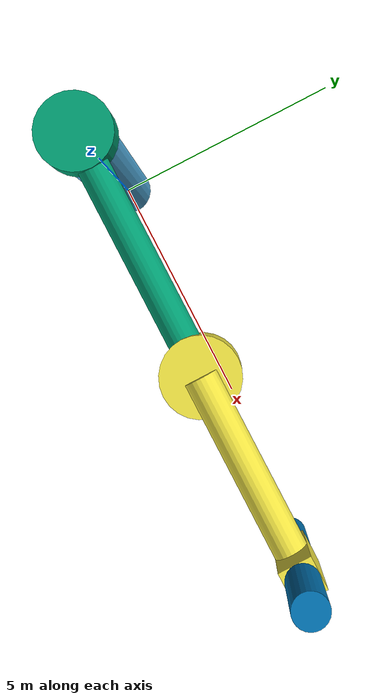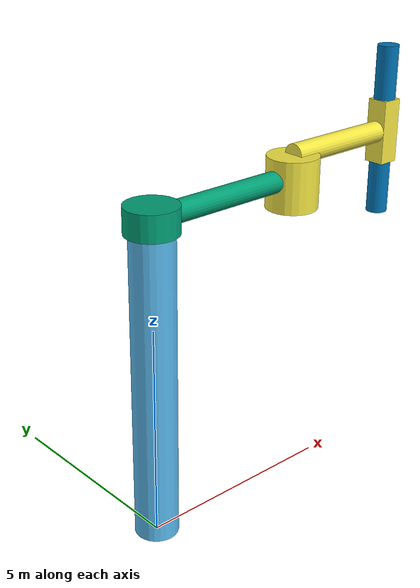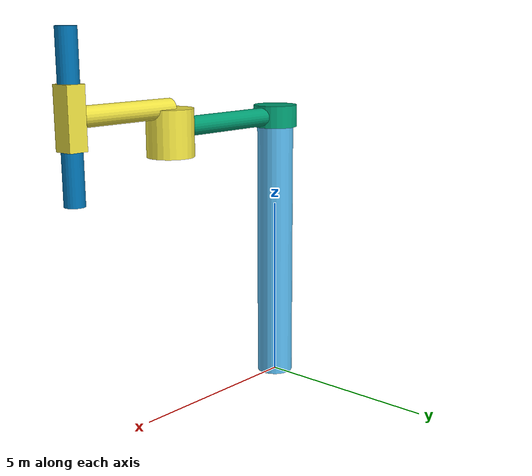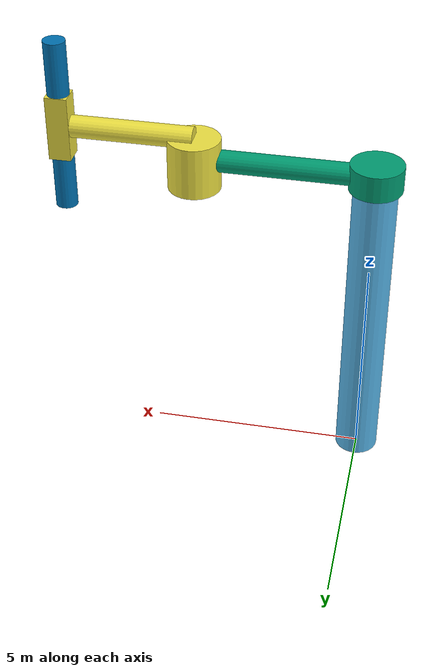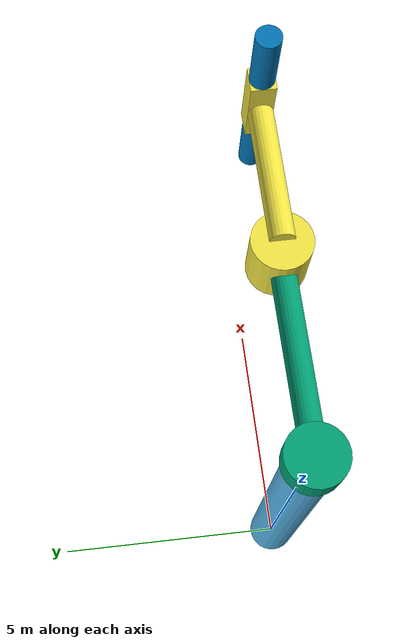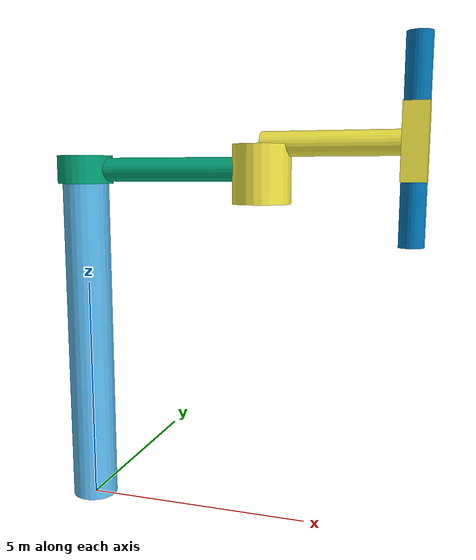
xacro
<?xml version="1.0"?>
<robot name="scara_robot">

  <link name="world"/> <!--fixing the base link to the global origin here-->
  <joint name="world_to_base" type="fixed">
    <parent link="world"/>
    <child link="base_link"/>
    <origin xyz="0 0 0"/>
  </joint>

  <link name="base_link"><!-- Defining base link here -->
    <visual>
      <geometry>
        <cylinder radius="0.5" length="7.5"/>
      </geometry>
      <origin xyz="0 0 3.75"/>
    </visual>
    <collision>
      <geometry>
        <cylinder radius="0.5" length="7.5"/>
      </geometry>
      <origin xyz="0 0 3.75"/>
    </collision>
    <inertial>
      <mass value="20.0"/>
      <inertia ixx="30" iyy="30" izz="30"
               ixy="0" ixz="0" iyz="0"/> <!--using some junk values so that gazebo doens't cause issues -->
    </inertial>
  </link>

  <joint name="joint1" type="fixed"> <!-- was revolute-->
    <parent link="base_link"/>
    <child link="link1"/>
    <origin xyz="0 0 7.5"/> <!--definig link1 at 1.5m from the  base about z-->
    <axis xyz="0 0 1"/>     <!--defining j1 axis of rotatoin along z axis-->
    <limit lower="-3.14" upper="3.14" effort="100" velocity="1.0"/> <!-- making sure the joint goes from -pi to pi. dummy values for effort and velocity-->
  </joint>

  <!-- Link 1 -->
  <link name="link1">
    <visual>
        <geometry>    <!-- adding a joint cylinder that makes it look connected. It is only visual-->
            <cylinder radius="0.6" length="0.6"/>
        </geometry>
        <origin xyz="0 0 0"/>
    </visual>

    <visual><!--Actual link display -->
      <geometry>
        <cylinder radius="0.25" length="4.0"/>
      </geometry>
      <origin xyz="2 0 0" rpy="0 1.5708 0"/> <!--rotating it to make it horizontal-->
    </visual>

    <collision>
      <geometry>
        <cylinder radius="0.25" length="4.0"/>
      </geometry>
      <origin xyz="2 0 0" rpy="0 1.5708 0"/>
    </collision>
    <inertial>
      <mass value="10"/>
      <inertia ixx="30" iyy="30" izz="30"
               ixy="0" ixz="0" iyz="0"/>
    </inertial>
  </link>

  <!-- Joint 2 -->
  <joint name="joint2" type="fixed">  <!-- was revolute-->
    <parent link="link1"/>
    <child link="link2"/>
    <origin xyz="4 0 0.5"/> <!--0.1 vertical offeset to match the diagram-->
    <axis xyz="0 0 1"/> <!--J2 axis along z axis-->
    <limit lower="-3.14" upper="3.14" effort="100" velocity="1.0"/>
  </joint>

  <!-- Link 2 -->
  <link name="link2">

    <visual>
        <geometry>    <!-- adding a joint cylinder that makes it look connected. It is only visual-->
            <cylinder radius="0.6" length="1.2"/>
        </geometry>
        <origin xyz="0 0 -0.6"/>
    </visual>
    <visual>  <!--housing for the prismatic jooint-->
      <geometry>
        <box size="0.5 0.5 1.5"/>
      </geometry>
      <origin xyz="3 0 0"/> <!--offset to match J3-->
    </visual>

    <visual><!--actual link display -->
      <geometry>
        <cylinder radius="0.25" length="3.0"/>
      </geometry>
      <origin xyz="1.5 0 0" rpy="0 1.5708 0"/> <!--horizontal arm-->
    </visual>
    <collision>
      <geometry>
        <cylinder radius="0.25" length="3.0"/>
      </geometry>
      <origin xyz="1.5 0 0" rpy="0 1.5708 0"/>
    </collision>
    <inertial>
      <mass value="10"/>
      <inertia ixx="30" iyy="30" izz="30"
               ixy="0" ixz="0" iyz="0"/>
    </inertial>
  </link>

  <!-- Joint 3 -->
  <joint name="joint3" type="prismatic">
    <parent link="link2"/>
    <child link="link3"/>
    <origin xyz="3 0 0"/>
    <axis xyz="0 0 1"/><!--keeping the z axis aligned but negating range to match diagram and have tool come down-->
    <limit lower="-2.5" upper="0" effort="100000" velocity="5.0"/>
  </joint>

  <!-- Link 3-->
  <link name="link3">

    <visual>
      <geometry>
        <cylinder radius="0.25" length="4.0"/> <!--EE starts at -0.4 Z wrt J3-->
      </geometry>
      <origin xyz="0 0 0"/>
    </visual>
    <collision>
      <geometry>
        <cylinder radius="0.25" length="4.0"/>
      </geometry>
      <origin xyz="0 0 0"/>
    </collision>
    <inertial>
      <mass value="10"/>
      <inertia ixx="30" iyy="30" izz="30"
               ixy="0" ixz="0" iyz="0"/>
    </inertial>
  </link>

  <!-- ros2_control interface -->

  <!-- Gazebo ros2_control plugin -->
  <gazebo>
    <plugin name="joint_state_publisher" filename="libgazebo_ros_joint_state_publisher.so">
      <joint_name>joint3</joint_name>
      <update_rate>100</update_rate>
    </plugin>
  </gazebo>

</robot>
